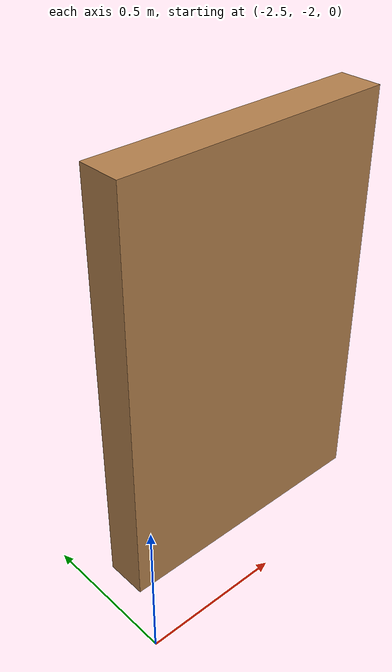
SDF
<?xml version='1.0'?>
<sdf version='1.6'>
  <model name='wall_1_v'>
    <pose frame=''>-1.905 -1.73 0 0 -0 0</pose>
    <link name='Wall_0'>
      <collision name='Wall_0_Collision'>
        <geometry>
          <box>
            <size>1 0.15 1.5</size>
          </box>
        </geometry>
        <pose frame=''>0 0 0.75 0 -0 0</pose>
      </collision>
      <visual name='Wall_0_Visual'>
        <pose frame=''>0 0 0.75 0 -0 0</pose>
        <geometry>
          <box>
            <size>1 0.15 1.5</size>
          </box>
        </geometry>
        <material>
          <script>
            <uri>file://media/materials/scripts/gazebo.material</uri>
            <name>Gazebo/Wood</name>
          </script>
          <ambient>1 1 1 1</ambient>
        </material>
        <meta>
          <layer>0</layer>
        </meta>
      </visual>
      <pose frame=''>0 0 0 0 -0 0</pose>
    </link>
    <static>1</static>
  </model>
</sdf>
